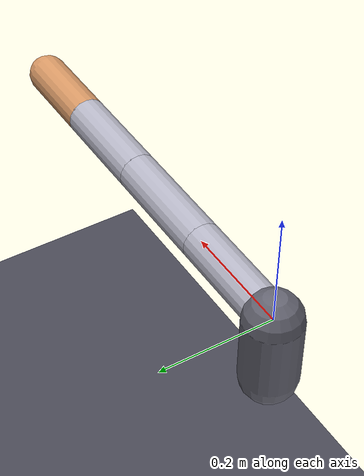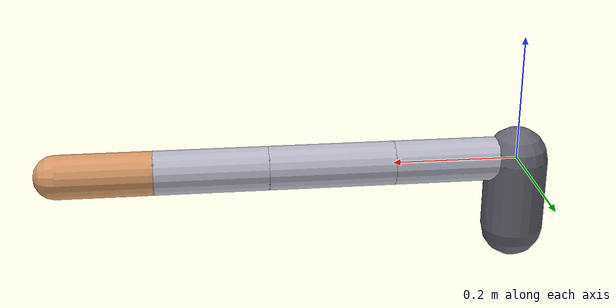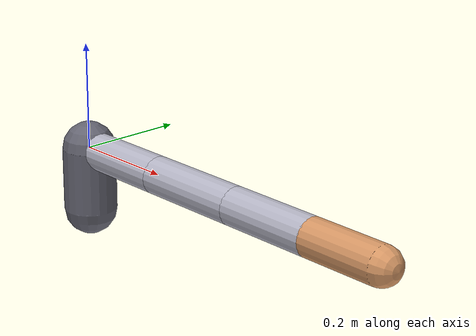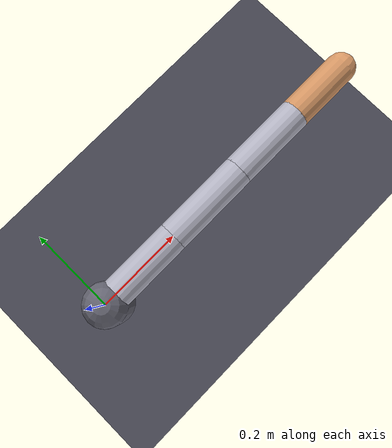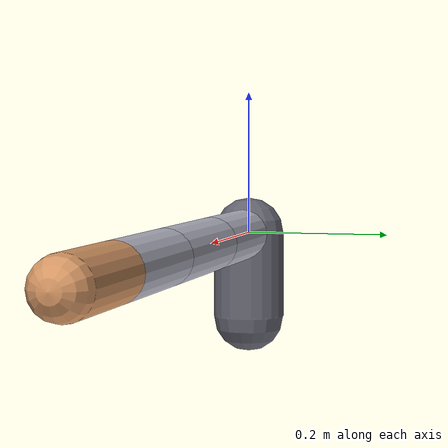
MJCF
<mujoco model="fen_stage1_arm">
  <!-- Stage 1 body: 4 actuated DOF, fixed base.
       Deliberately learnable-but-not-trivial: coupled multi-link dynamics
       under gravity, with joint limits and damping. -->

  <compiler angle="radian" autolimits="true"/>
  <option timestep="0.005" gravity="0 0 -9.81" integrator="implicitfast"/>

  <default>
    <joint damping="0.6" armature="0.02"/>
    <geom type="capsule" size="0.035" rgba="0.72 0.72 0.78 1" density="900"/>
    <motor ctrlrange="-2.5 2.5" gear="1"/>
  </default>

  <worldbody>
    <light pos="0 0 2" dir="0 0 -1"/>
    <geom name="floor" type="plane" size="3 3 0.1" pos="0 0 -0.8" rgba="0.28 0.28 0.33 1"/>

    <body name="base" pos="0 0 0">
      <geom fromto="0 0 -0.12 0 0 0" size="0.05" rgba="0.4 0.4 0.45 1"/>

      <body name="l1" pos="0 0 0">
        <joint name="j1" type="hinge" axis="0 0 1" range="-3.0 3.0"/>
        <geom fromto="0 0 0 0.20 0 0"/>

        <body name="l2" pos="0.20 0 0">
          <joint name="j2" type="hinge" axis="0 1 0" range="-2.2 2.2"/>
          <geom fromto="0 0 0 0.20 0 0"/>

          <body name="l3" pos="0.20 0 0">
            <joint name="j3" type="hinge" axis="0 1 0" range="-2.2 2.2"/>
            <geom fromto="0 0 0 0.18 0 0"/>

            <body name="l4" pos="0.18 0 0">
              <joint name="j4" type="hinge" axis="0 1 0" range="-2.2 2.2"/>
              <geom fromto="0 0 0 0.15 0 0" rgba="0.85 0.6 0.4 1"/>
              <site name="tip" pos="0.15 0 0" size="0.02"/>
            </body>
          </body>
        </body>
      </body>
    </body>
  </worldbody>

  <actuator>
    <motor name="m1" joint="j1"/>
    <motor name="m2" joint="j2"/>
    <motor name="m3" joint="j3"/>
    <motor name="m4" joint="j4"/>
  </actuator>
</mujoco>
